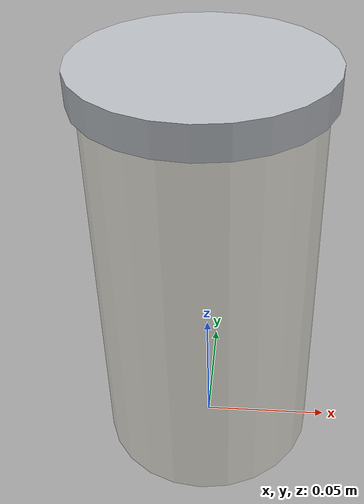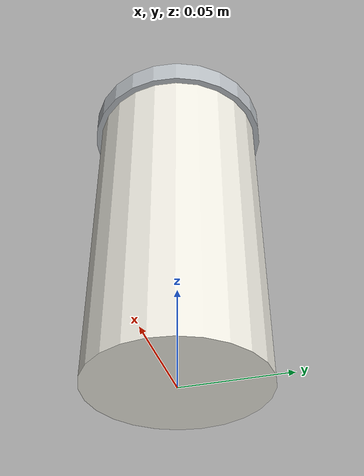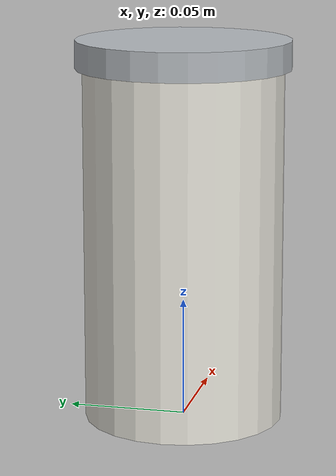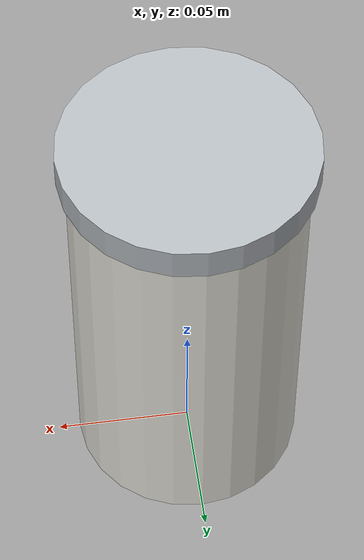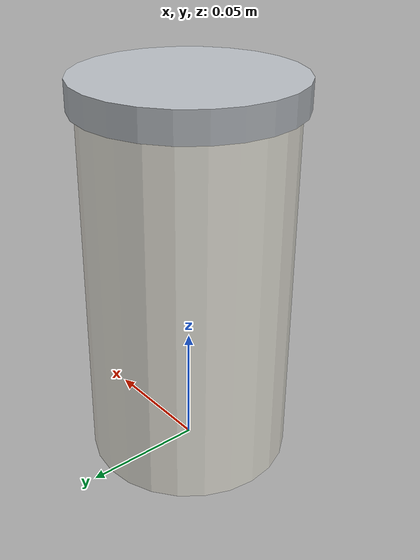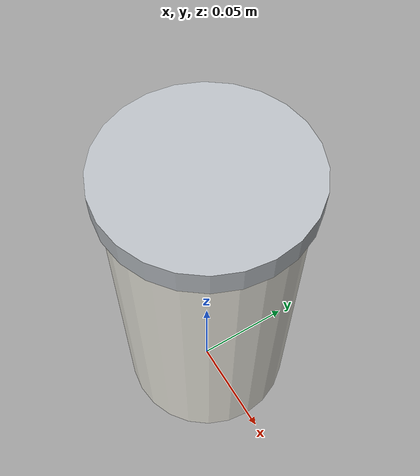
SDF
<?xml version="1.0"?>
<sdf version="1.8">
  <model name="trash_paper_cup">
    <static>true</static>
    <link name="trash_paper_cup_link">
      <inertial>
        <mass>0.05</mass>
        <inertia>
          <ixx>0.0002</ixx>
          <ixy>0.0</ixy>
          <ixz>0.0</ixz>
          <iyy>0.0002</iyy>
          <iyz>0.0</iyz>
          <izz>0.0002</izz>
        </inertia>
      </inertial>
      <collision name="trash_paper_cup_collision">
        <pose>0 0 0.075 0 0 0</pose>
        <geometry>
<cylinder><radius>0.042</radius><length>0.15</length></cylinder>
        </geometry>
      </collision>
    <visual name="cup_body">
      <pose>0 0 0.075 0 0 0</pose>
      <geometry>
<cylinder><radius>0.042</radius><length>0.15</length></cylinder>
      </geometry>
      <material>
        <ambient>0.93 0.92 0.88 1</ambient>
        <diffuse>0.93 0.92 0.88 1</diffuse>
        <specular>0.1 0.1 0.1 1</specular>
      </material>
    </visual>
    <visual name="cup_lid">
      <pose>0 0 0.155 0 0 0</pose>
      <geometry>
<cylinder><radius>0.045</radius><length>0.012</length></cylinder>
      </geometry>
      <material>
        <ambient>0.72 0.74 0.76 1</ambient>
        <diffuse>0.72 0.74 0.76 1</diffuse>
        <specular>0.1 0.1 0.1 1</specular>
      </material>
    </visual>
    </link>
  </model>
</sdf>
